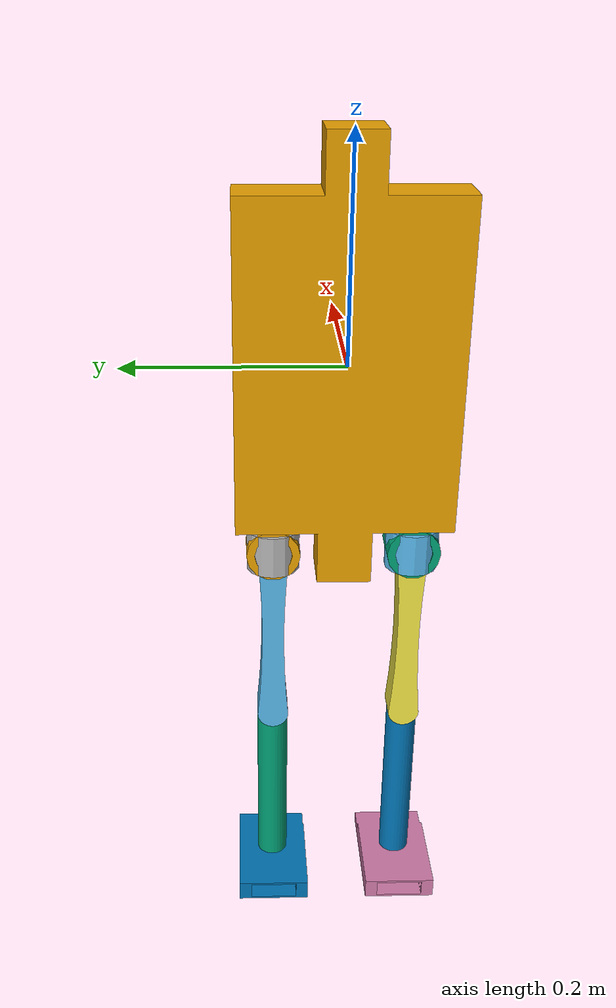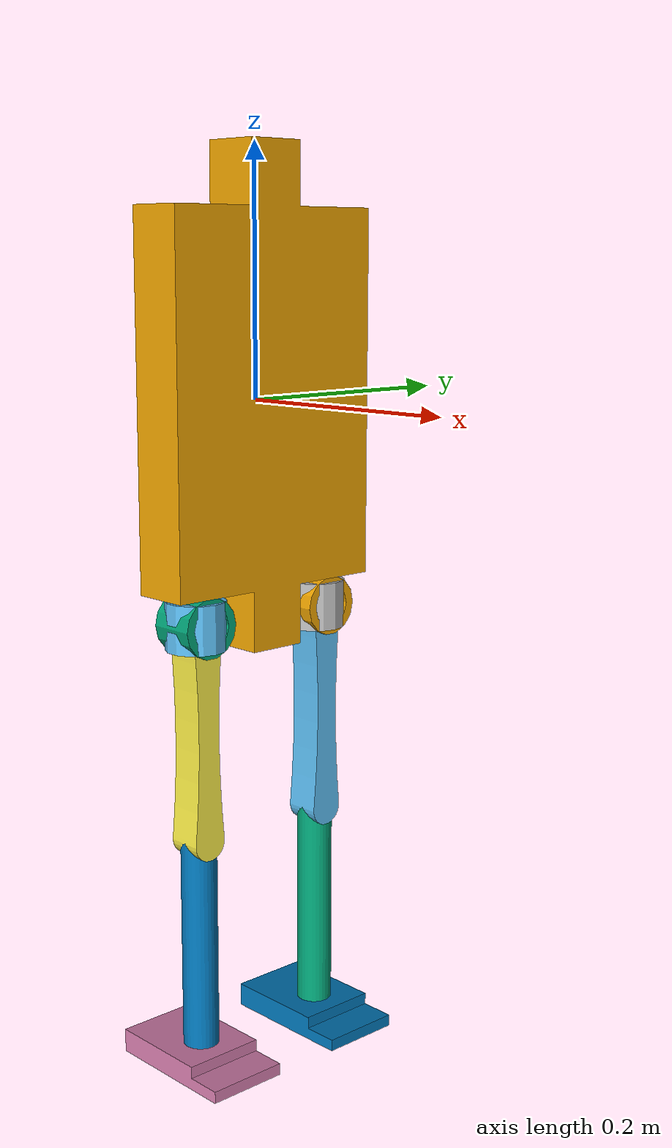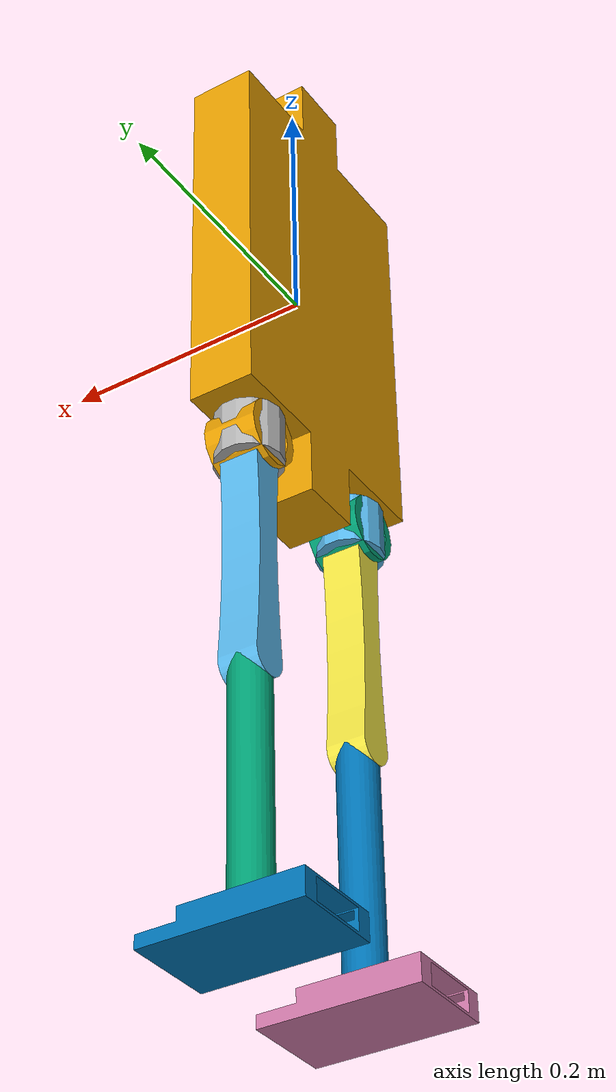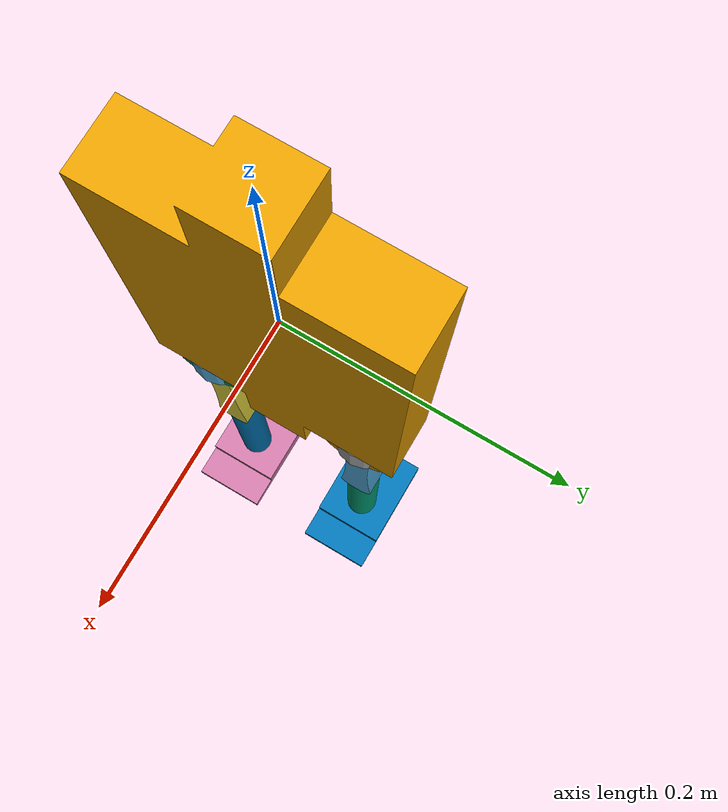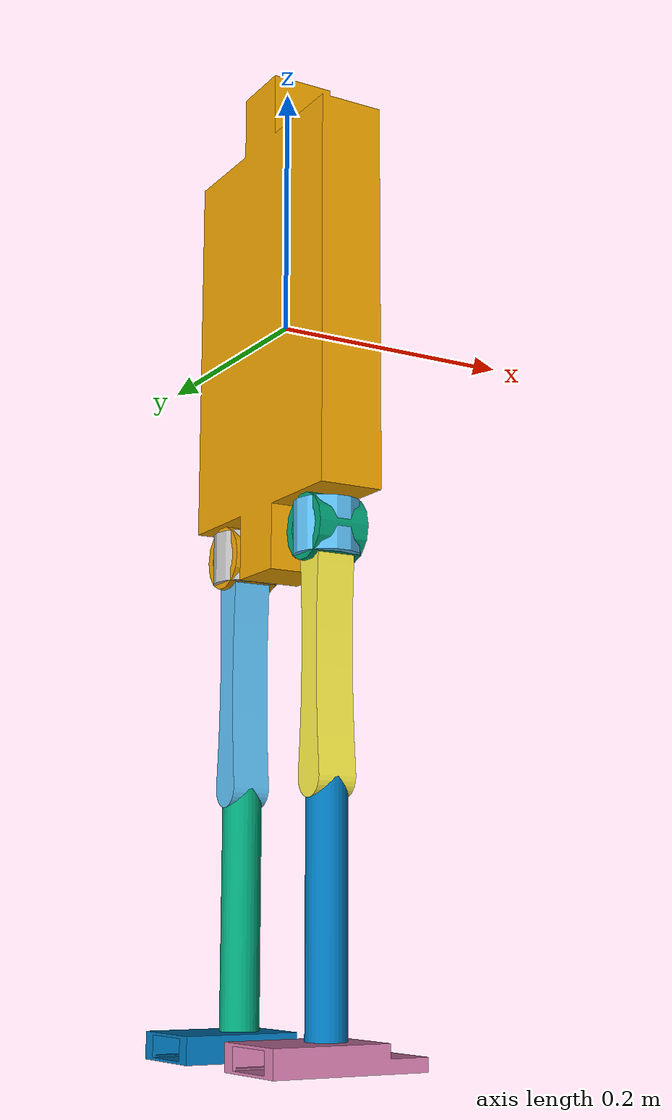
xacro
<?xml version="1.0"?>
<robot name="quadrupedal_robot" xmlns:xacro="https://ros.org/wiki/xacro">
	<xacro:macro name="link_macro" params="name inertialOrigin ixx ixy ixz iyy iyz izz mass filename color">
		<link name="${name}">
			<inertial>
				<mass value="${mass}"/>
				<origin xyz="${inertialOrigin}" rpy="0 0 0"/>
				<inertia ixx="${ixx}" ixy="${ixy}"  ixz="${ixz}" iyy="${iyy}" iyz="${iyz}" izz="${izz}"/>
			</inertial>
			<visual>
				<geometry>
					<mesh filename="${filename}"/>
				</geometry>
			</visual>
			<collision>
				<geometry>
					<mesh filename="${filename}"/>
				</geometry>
			</collision>
		</link>
	</xacro:macro>

	<xacro:macro name="joint_macro" params="name axis xyz parent child type">
		<joint name="${name}" type="${type}">
			<parent link="${parent}"/>
			<child link="${child}"/>
			<axis xyz="${axis}"/>
			<origin xyz="${xyz}" rpy="0 0 0"/>
			<!--dynamics damping="0.05"/-->
			<dynamics friction="0.05"/>
			<limit lower="-2.5" upper="2.5" effort="8.0" velocity="6.0"/>
		</joint>
	</xacro:macro>

	<xacro:macro name="trans_macro" params="name joint_name act_name">
		<transmission name="${name}">
			<type>transmission_interface/SimpleTransmission</type>
			<joint name="${joint_name}">
				<hardwareInterface>hardware_interface/EffortJointInterface</hardwareInterface>
			</joint>
			<actuator name="${act_name}">
				<hardwareInterface>hardware_interface/EffortJointInterface</hardwareInterface>
				<mechanismReduction>1</mechanismReduction>
			</actuator>
		</transmission>
	</xacro:macro>

	<xacro:link_macro name="body" inertialOrigin="0 0 0" ixx="0.067653450" ixy="0.0"  ixz="0.0" iyy="0.053440875" iyz="0.0" izz="0.017235495" mass="4.546" filename="meshes/stl/base.stl" color="Blue"/>

	<!-- right leg -->
	<xacro:joint_macro name="r_yaw_hipJoint" axis="0 0 1" xyz="0.0 -0.065 -0.175" parent="body" child="r_yaw_hipLink" type="revolute"/>
	<xacro:trans_macro name="r_yaw_hipTrans" joint_name="r_yaw_hipJoint" act_name="r_yaw_hipMotor"/>
	<xacro:link_macro name="r_yaw_hipLink" inertialOrigin="0 0 0" ixx="0.000039598421" ixy="0.0" ixz="0.0" iyy="0.000039598427" iyz="0.0" izz="0.000050357027" mass="0.108149" filename="meshes/stl/hip_Zaxis_link.stl" color="Red"/>
	<xacro:joint_macro name="r_roll_hipJoint" axis="1 0 0" xyz="0.0 0.0 0.0" parent="r_yaw_hipLink" child="r_roll_hipLink" type="revolute"/>
	<xacro:trans_macro name="r_roll_hipTrans" joint_name="r_roll_hipJoint" act_name="r_roll_hipMotor"/>
	<xacro:link_macro name="r_roll_hipLink" inertialOrigin="0 0 0" ixx="0.000050357027" ixy="0.0" ixz="0.0" iyy="0.000039598427" iyz="0.0" izz="0.000039598421" mass="0.108149" filename="meshes/stl/hip_Xaxis_link.stl" color="Red"/>

	<xacro:joint_macro name="r_pitch_hipJoint" axis="0 1 0" xyz="0.0 0.0 0.0" parent="r_roll_hipLink" child="r_thighLink" type="revolute"/>
	<xacro:trans_macro name="r_pitch_hipTrans" joint_name="r_pitch_hipJoint" act_name="r_pitch_hipMotor"/>
	<xacro:link_macro name="r_thighLink" inertialOrigin="0 0 -0.09" ixx="0.000525492139" ixy="0.0" ixz="0.0" iyy="0.000525518548" iyz="0.0" izz="0.000024541119" mass="0.12805" filename="meshes/stl/thigh_link.stl" color="Red"/>

	<xacro:joint_macro name="r_kneeJoint" axis="0 1 0" xyz="0.0 0.0 -0.18" parent="r_thighLink" child="r_kneeLink" type="revolute"/>
	<xacro:trans_macro name="r_kneeTrans" joint_name="r_kneeJoint" act_name="r_kneeMotor"/>
	<xacro:link_macro name="r_kneeLink" inertialOrigin="0 0 -0.09" ixx="0.000345322965" ixy="0.0" ixz="0.0" iyy="0.000345322962" iyz="0.0" izz="0.000022817471" mass="0.123672" filename="meshes/stl/knee_link.stl" color="Green"/>

	<xacro:joint_macro name="r_pitch_ankleJoint" axis="0 1 0" xyz="0.0 0.0 -0.18" parent="r_kneeLink" child="r_ankleLink" type="revolute"/>
	<xacro:trans_macro name="r_pitch_ankleTrans" joint_name="r_pitch_ankleJoint" act_name="r_pitch_ankleMotor"/>
	<xacro:link_macro name="r_ankleLink" inertialOrigin="0 0 0.01" ixx="0.000020250" ixy="0.0" ixz="0.0" iyy="0.000020250" iyz="0.0" izz="0.000014580" mass="0.0972" filename="meshes/stl/ankle_link.stl" color="Blue"/>

	<xacro:joint_macro name="r_roll_ankleJoint" axis="1 0 0" xyz="0.0 0.0 0.0" parent="r_ankleLink" child="r_tipLink" type="revolute"/>
	<xacro:trans_macro name="r_roll_ankleTrans" joint_name="r_roll_ankleJoint" act_name="r_roll_ankleMotor"/>
	<xacro:link_macro name="r_tipLink" inertialOrigin="0.002639 0.0 -0.011265" ixx="0.000081336818" ixy="0.0" ixz="0.000007800852" iyy="0.000185289302" iyz="0.0" izz="0.000251133962" mass="0.139622" filename="meshes/stl/tip_link.stl" color="Blue"/>

	<!-- left leg -->

	<xacro:joint_macro name="l_yaw_hipJoint" axis="0 0 1" xyz="0.0 0.065 -0.175" parent="body" child="l_yaw_hipLink" type="revolute"/>
	<xacro:trans_macro name="l_yaw_hipTrans" joint_name="l_yaw_hipJoint" act_name="l_yaw_hipMotor"/>
	<xacro:link_macro name="l_yaw_hipLink" inertialOrigin="0 0 0" ixx="0.000039598421" ixy="0.0" ixz="0.0" iyy="0.000039598427" iyz="0.0" izz="0.000050357027" mass="0.108149" filename="meshes/stl/hip_Zaxis_link.stl" color="Red"/>
	<xacro:joint_macro name="l_roll_hipJoint" axis="1 0 0" xyz="0.0 0.0 0.0" parent="l_yaw_hipLink" child="l_roll_hipLink" type="revolute"/>
	<xacro:trans_macro name="l_roll_hipTrans" joint_name="l_roll_hipJoint" act_name="l_roll_hipMotor"/>
	<xacro:link_macro name="l_roll_hipLink" inertialOrigin="0 0 0" ixx="0.000050357027" ixy="0.0" ixz="0.0" iyy="0.000039598427" iyz="0.0" izz="0.000039598421" mass="0.108149" filename="meshes/stl/hip_Xaxis_link.stl" color="Red"/>

	<xacro:joint_macro name="l_pitch_hipJoint" axis="0 1 0" xyz="0.0 0.0 0.0" parent="l_roll_hipLink" child="l_thighLink" type="revolute"/>
	<xacro:trans_macro name="l_pitch_hipTrans" joint_name="l_pitch_hipJoint" act_name="l_pitch_hipMotor"/>
	<xacro:link_macro name="l_thighLink" inertialOrigin="0 0 -0.09" ixx="0.000525492139" ixy="0.0" ixz="0.0" iyy="0.000525518548" iyz="0.0" izz="0.000024541119" mass="0.12805" filename="meshes/stl/thigh_link.stl" color="Red"/>

	<xacro:joint_macro name="l_kneeJoint" axis="0 1 0" xyz="0.0 0.0 -0.18" parent="l_thighLink" child="l_kneeLink" type="revolute"/>
	<xacro:trans_macro name="l_kneeTrans" joint_name="l_kneeJoint" act_name="l_kneeMotor"/>
	<xacro:link_macro name="l_kneeLink" inertialOrigin="0 0 -0.09" ixx="0.000345322965" ixy="0.0" ixz="0.0" iyy="0.000345322962" iyz="0.0" izz="0.000022817471" mass="0.123672" filename="meshes/stl/knee_link.stl" color="Green"/>

	<xacro:joint_macro name="l_pitch_ankleJoint" axis="0 1 0" xyz="0.0 0.0 -0.18" parent="l_kneeLink" child="l_ankleLink" type="revolute"/>
	<xacro:trans_macro name="l_pitch_ankleTrans" joint_name="l_pitch_ankleJoint" act_name="l_pitch_ankleMotor"/>
	<xacro:link_macro name="l_ankleLink" inertialOrigin="0 0 0.01" ixx="0.000020250" ixy="0.0" ixz="0.0" iyy="0.000020250" iyz="0.0" izz="0.000014580" mass="0.0972" filename="meshes/stl/ankle_link.stl" color="Blue"/>

	<xacro:joint_macro name="l_roll_ankleJoint" axis="1 0 0" xyz="0.0 0.0 0.0" parent="l_ankleLink" child="l_tipLink" type="revolute"/>
	<xacro:trans_macro name="l_roll_ankleTrans" joint_name="l_roll_ankleJoint" act_name="l_roll_ankleMotor"/>
	<xacro:link_macro name="l_tipLink" inertialOrigin="0.002639 0.0 -0.011265" ixx="0.000081336818" ixy="0.0" ixz="0.000007800852" iyy="0.000185289302" iyz="0.0" izz="0.000251133962" mass="0.139622" filename="meshes/stl/tip_link.stl" color="Blue"/>

</robot>
